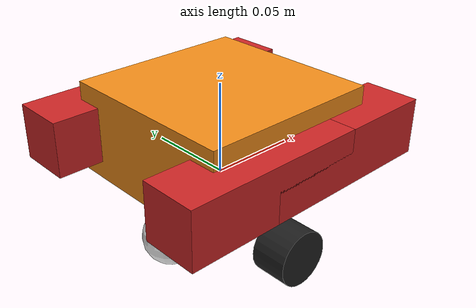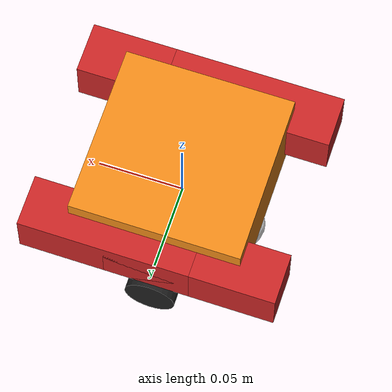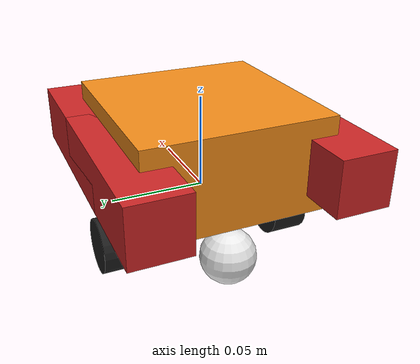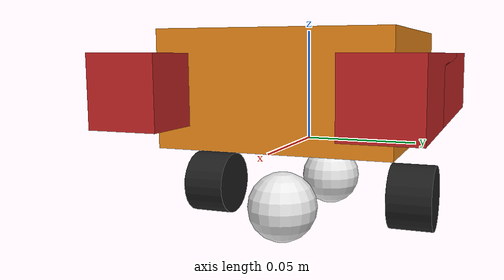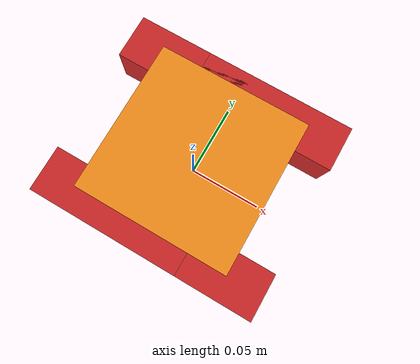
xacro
<?xml version="1.0"?>
<!-- Basic differential drive mobile base -->
<robot xmlns:xacro="http://www.ros.org/wiki/xacro" name="diffdrive_robot">
  <xacro:arg name="prefix" default="" />
  <xacro:arg name="use_mock_hardware" default="false" />

  <xacro:include filename="$(find ros2_control_demo_description)/diffbot/urdf/diffbot_description.urdf.xacro" />
  <xacro:include filename="$(find ros2_control_demo_example_2)/urdf/actuation_system.urdf.xacro" />

  <!-- Import Rviz colors -->
  <xacro:include filename="$(find ros2_control_demo_description)/diffbot/urdf/diffbot.materials.xacro" />

  <!-- Import diffbot ros2_control description -->
  <xacro:include filename="$(find ros2_control_demo_example_2)/ros2_control/diffbot.ros2_control.xacro" />

  <!-- Get the base dimensions from diffbot macro -->
  <xacro:property name="base_width" value="0.1" />
  <xacro:property name="base_length" value="0.1" />
  <xacro:property name="base_height" value="0.05" />

  <xacro:diffbot prefix="$(arg prefix)" />
  <xacro:actuation_system
    prefix="$(arg prefix)"
    base_length="${base_length}"
    base_width="${base_width}"
    base_height="${base_height}" />

  <!-- Instantiate drive system -->
  <xacro:diffbot_ros2_control
    name="DiffBotSystem"
    prefix="$(arg prefix)"
    use_mock_hardware="$(arg use_mock_hardware)"/>

  <!-- Instantiate actuation system -->
  <xacro:actuation_ros2_control
    name="ActuationSystem"
    prefix="$(arg prefix)"
    use_mock_hardware="$(arg use_mock_hardware)"/>

</robot>

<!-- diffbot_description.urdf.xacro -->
<robot xmlns:xacro="http://www.ros.org/wiki/xacro">

  <xacro:macro name="diffbot" params="prefix">

  <!-- Constants for robot dimensions -->
  <xacro:property name="PI" value="3.1415926535897931"/>
  <xacro:property name="base_mass" value="0.3" /> <!-- arbitrary value for base mass -->
  <xacro:property name="base_width" value="0.1" />
  <xacro:property name="base_length" value="0.1" />
  <xacro:property name="base_height" value="0.05" />
  <xacro:property name="wheel_mass" value="0.3" /> <!-- arbitrary value for wheel mass -->
  <xacro:property name="wheel_len" value="0.020" />
  <xacro:property name="wheel_radius" value="0.015" />
  <xacro:property name="caster_wheel_mass" value="0.1" /> <!-- arbitrary value for caster wheel mass -->
  <xacro:property name="caster_wheel_radius" value="0.015" />
  <xacro:property name="z_offset" value="-${base_height/2}" /> <!-- Space btw top of beam and the each joint -->

  <!-- Base Link -->
  <link name="${prefix}base_link">
    <collision>
      <origin xyz="0 0 0" rpy="0 0 0"/>
      <geometry>
        <box size="${base_width} ${base_length} ${base_height}"/>
      </geometry>
    </collision>

    <visual>
      <origin xyz="0 0 ${base_height/2}" rpy="0 0 0"/>
      <geometry>
        <box size="${base_width} ${base_length} ${base_height}"/>
      </geometry>
      <material name="orange"/>
    </visual>

    <inertial>
      <origin xyz="0 0 0" rpy="0 0 0"/>
      <mass value="${base_mass}"/>
      <inertia
        ixx="${base_mass / 12.0 * (base_length*base_length + base_height*base_height)}" ixy="0.0" ixz="0.0"
        iyy="${base_mass / 12.0 * (base_height*base_height + base_width*base_width)}" iyz="0.0"
        izz="${base_mass / 12.0 * (base_width*base_width + base_length*base_length)}"/>
      </inertial>
    </link>

    <joint name="${prefix}left_wheel_joint" type="continuous">
      <parent link="${prefix}base_link"/>
      <child link="${prefix}left_wheel"/>
      <origin xyz="0 -${base_width/2} ${z_offset}" rpy="0 0 0"/>
      <axis xyz="0 1 0"/>
      <dynamics damping="0.2"/>
      <limit effort="100" velocity="60.0"/>
    </joint>

    <!-- left wheel Link -->
    <link name="${prefix}left_wheel">
      <collision>
        <origin xyz="0 0 0" rpy="${PI/2} 0 0"/>
        <geometry>
          <cylinder length="${wheel_len}" radius="${wheel_radius}"/>
        </geometry>
      </collision>

      <visual>
        <origin xyz="0 0 0" rpy="${PI/2} 0 0"/>
        <geometry>
          <cylinder length="${wheel_len}" radius="${wheel_radius}"/>
        </geometry>
        <material name="black"/>
      </visual>

      <inertial>
        <origin xyz="0 0 0" rpy="${PI/2} 0 0"/>
        <mass value="${wheel_mass}"/>
        <inertia
          ixx="${wheel_mass / 12.0 * (3*wheel_radius*wheel_radius + wheel_len*wheel_len)}" ixy="0.0" ixz="0.0"
          iyy="${wheel_mass / 12.0 * (3*wheel_radius*wheel_radius + wheel_len*wheel_len)}" iyz="0.0"
          izz="${wheel_mass / 2.0 * wheel_radius*wheel_radius}"/>
        </inertial>
      </link>

    <joint name="${prefix}right_wheel_joint" type="continuous">
      <parent link="${prefix}base_link"/>
      <child link="${prefix}right_wheel"/>
      <origin xyz="0 ${base_width/2} ${z_offset}" rpy="0 0 0"/>
      <axis xyz="0 1 0"/>
      <dynamics damping="0.2"/>
      <limit effort="100" velocity="60.0"/>
    </joint>

    <!-- right wheel Link -->
    <link name="${prefix}right_wheel">
      <collision>
        <origin xyz="0 0 0" rpy="${PI/2} 0 0"/>
        <geometry>
          <cylinder length="${wheel_len}" radius="${wheel_radius}"/>
        </geometry>
      </collision>

      <visual>
        <origin xyz="0 0 0" rpy="${PI/2} 0 0"/>
        <geometry>
          <cylinder length="${wheel_len}" radius="${wheel_radius}"/>
        </geometry>
        <material name="black"/>
      </visual>

      <inertial>
        <origin xyz="0 0 0" rpy="${PI/2} 0 0"/>
        <mass value="${wheel_mass}"/>
        <inertia
          ixx="${wheel_mass / 12.0 * (3*wheel_radius*wheel_radius + wheel_len*wheel_len)}" ixy="0.0" ixz="0.0"
          iyy="${wheel_mass / 12.0 * (3*wheel_radius*wheel_radius + wheel_len*wheel_len)}" iyz="0.0"
          izz="${wheel_mass / 2.0 * wheel_radius*wheel_radius}"/>
        </inertial>
      </link>

    <joint name="${prefix}caster_frontal_wheel_joint" type="fixed">
      <parent link="${prefix}base_link"/>
      <child link="${prefix}caster_frontal_wheel"/>
      <origin xyz="${base_width/2 - caster_wheel_radius} 0 ${z_offset}" rpy="0 0 0"/>
    </joint>

    <!-- caster frontal wheel Link -->
    <link name="${prefix}caster_frontal_wheel">
      <collision>
        <origin xyz="0 0 0" rpy="0 0 0"/>
        <geometry>
          <sphere radius="${caster_wheel_radius}"/>
        </geometry>
      </collision>

      <visual>
        <origin xyz="0 0 0" rpy="0 0 0"/>
        <geometry>
          <sphere radius="${caster_wheel_radius}"/>
        </geometry>
        <material name="white"/>
      </visual>

      <inertial>
        <origin xyz="0 0 0" rpy="0 0 0"/>
        <mass value="${caster_wheel_mass}"/>
        <inertia
          ixx="${caster_wheel_mass * 0.4 * (caster_wheel_radius * caster_wheel_radius)}" ixy="0.0" ixz="0.0"
          iyy="${caster_wheel_mass * 0.4 * (caster_wheel_radius * caster_wheel_radius)}" iyz="0.0"
          izz="${caster_wheel_mass * 0.4 * (caster_wheel_radius * caster_wheel_radius)}"/>
        </inertial>
      </link>

    <joint name="${prefix}caster_rear_wheel_joint" type="fixed">
      <parent link="${prefix}base_link"/>
      <child link="${prefix}caster_rear_wheel"/>
      <origin xyz="${-base_width/2 + caster_wheel_radius} 0 ${z_offset}" rpy="0 0 0"/>
    </joint>

    <!-- caster rear wheel Link -->
    <link name="${prefix}caster_rear_wheel">
      <collision>
        <origin xyz="0 0 0" rpy="0 0 0"/>
        <geometry>
          <sphere radius="${caster_wheel_radius}"/>
        </geometry>
      </collision>

      <visual>
        <origin xyz="0 0 0" rpy="0 0 0"/>
        <geometry>
          <sphere radius="${caster_wheel_radius}"/>
        </geometry>
        <material name="white"/>
      </visual>

      <inertial>
        <origin xyz="0 0 0" rpy="0 0 0"/>
        <mass value="${caster_wheel_mass}"/>
        <inertia
          ixx="${caster_wheel_mass * 0.4 * (caster_wheel_radius * caster_wheel_radius)}" ixy="0.0" ixz="0.0"
          iyy="${caster_wheel_mass * 0.4 * (caster_wheel_radius * caster_wheel_radius)}" iyz="0.0"
          izz="${caster_wheel_mass * 0.4 * (caster_wheel_radius * caster_wheel_radius)}"/>
        </inertial>
      </link>

  </xacro:macro>

</robot>

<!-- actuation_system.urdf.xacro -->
<robot xmlns:xacro="http://www.ros.org/wiki/xacro">

  <xacro:macro name="actuation_system" params="prefix base_length base_width base_height">
    <!-- Constants for robot dimensions -->
    <xacro:property name="actuator_mass" value="0.2" />
    <xacro:property name="actuator_length" value="0.1" />
    <xacro:property name="actuator_width" value="0.03" />
    <xacro:property name="actuator_height" value="0.03" />

    <!-- Actuator Joints and Links -->
    <xacro:macro name="actuator" params="id parent_link x y z">
      <joint name="${prefix}actuator_joint_${id}" type="continuous">
        <parent link="${parent_link}"/>
        <child link="${prefix}actuator_link_${id}"/>
        <origin xyz="${x} ${y} ${z}" rpy="0 0 0"/>
        <axis xyz="0 0 1"/>
        <dynamics damping="0.1"/>
        <limit effort="100" velocity="10.0"/>
      </joint>

      <link name="${prefix}actuator_link_${id}">
        <collision>
          <origin xyz="0 0 0" rpy="0 0 0"/>
          <geometry>
            <box size="${actuator_length} ${actuator_width} ${actuator_height}"/>
          </geometry>
        </collision>

        <visual>
          <origin xyz="0 0 0" rpy="0 0 0"/>
          <geometry>
            <box size="${actuator_length} ${actuator_width} ${actuator_height}"/>
          </geometry>
          <material name="red"/>
        </visual>

        <inertial>
          <origin xyz="0 0 0" rpy="0 0 0"/>
          <mass value="${actuator_mass}"/>
          <inertia
            ixx="${actuator_mass / 12.0 * (actuator_width*actuator_width + actuator_height*actuator_height)}"
            ixy="0.0"
            ixz="0.0"
            iyy="${actuator_mass / 12.0 * (actuator_length*actuator_length + actuator_height*actuator_height)}"
            iyz="0.0"
            izz="${actuator_mass / 12.0 * (actuator_length*actuator_length + actuator_width*actuator_width)}"/>
        </inertial>
      </link>
    </xacro:macro>

    <!-- Create 4 actuators -->
    <xacro:actuator id="0" parent_link="${prefix}base_link" x="${-base_length/4}" y="${-base_width/2}" z="${base_height/2}"/>
    <xacro:actuator id="1" parent_link="${prefix}base_link" x="${base_length/4}" y="${-base_width/2}" z="${base_height/2}"/>
    <xacro:actuator id="2" parent_link="${prefix}base_link" x="${-base_length/4}" y="${base_width/2}" z="${base_height/2}"/>
    <xacro:actuator id="3" parent_link="${prefix}base_link" x="${base_length/4}" y="${base_width/2}" z="${base_height/2}"/>

  </xacro:macro>

</robot>
